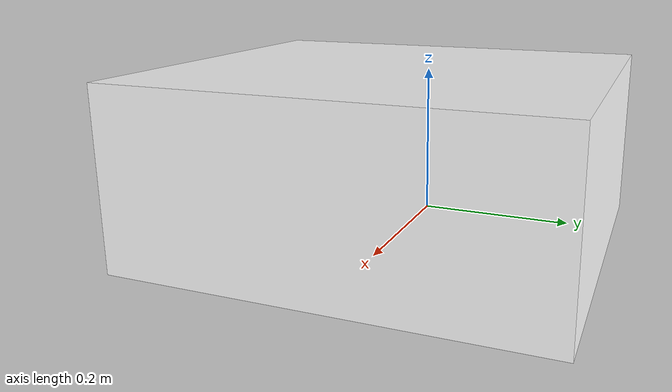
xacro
<?xml version="1.0"?>
<robot xmlns:xacro="http://www.ros.org/wiki/xacro">

<!--Colors for the urdf-->
    <material name="white">
        <color rgba="1 1 1 1" />
    </material>

    <material name="orange">
        <color rgba="1 0.3 0.1 1" />
    </material>

    <material name="blue">
        <color rgba="0.2 0.2 1 1" />
    </material>

    <material name="black">
        <color rgba="0 0 0 1" />
    </material>

<!-- Base link -->
    <link name="base_link">
    </link>

<!-- Chassis link -->
    <joint name="chassis_joint" type="fixed">
        <parent link="base_link"/>
        <child link="chassis" />
        <origin xyz="-0.1 0 0" />
    </joint>

    <link name="chassis">
        <visual>
        <origin xyz="0.23 0 0.11" />
            <geometry>
                <box size="0.46 0.52 0.22" />
            </geometry>
            <material name="white" />
        </visual>
    </link>

</robot>
